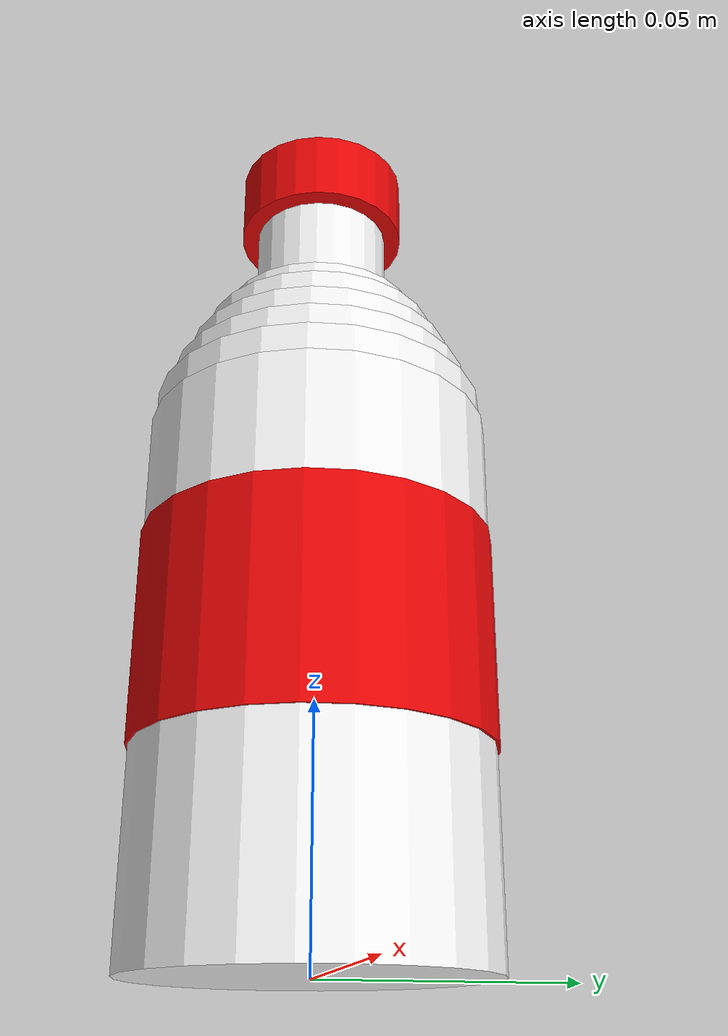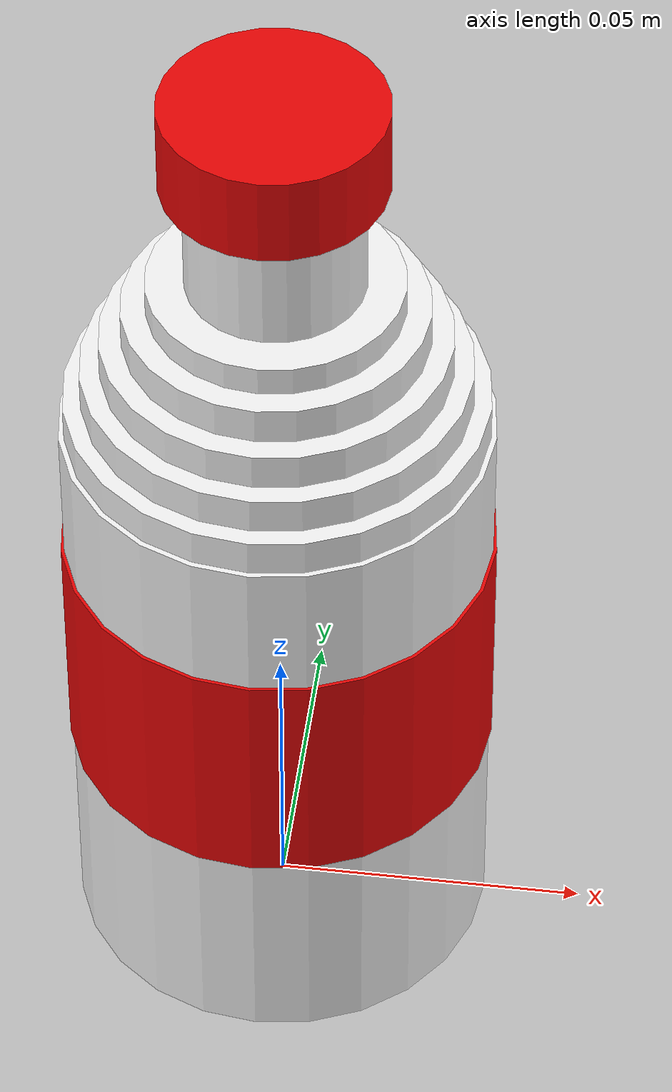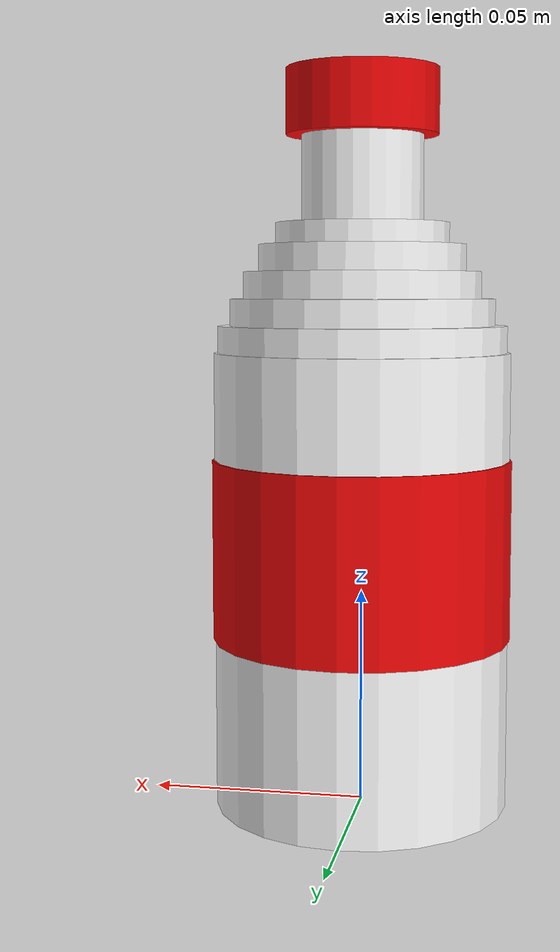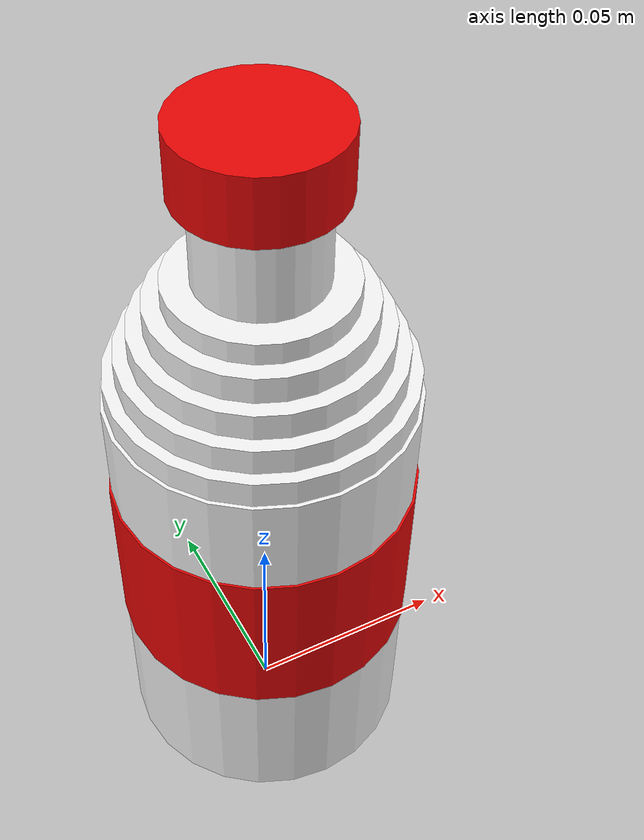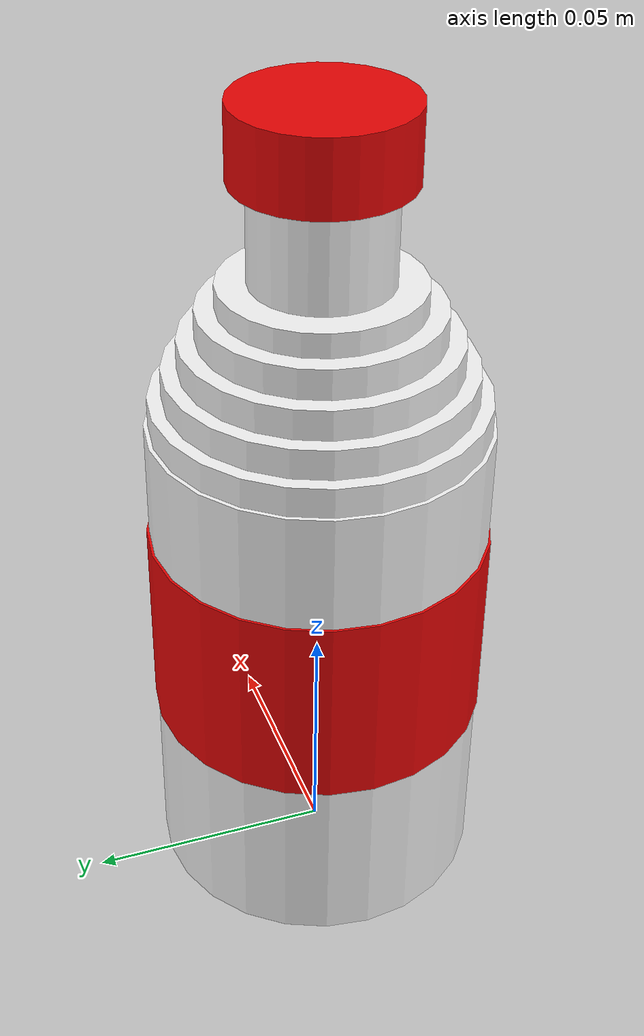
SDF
<?xml version="1.0"?>
<sdf version="1.6">
  <model name="bottle_model">
    <static>true</static>
    <link name="bottle_link">
      <collision name="bottle_collision">
        <pose>0 0 0.085 0 0 0</pose>
        <geometry>
          <cylinder>
            <radius>0.035</radius>
            <length>0.17</length>
          </cylinder>
        </geometry>
      </collision>

      <visual name="lower_body">
        <pose>0 0 0.01971 0 0 0</pose>
        <geometry>
          <cylinder>
            <radius>0.03412</radius>
            <length>0.03942</length>
          </cylinder>
        </geometry>
        <material>
          <ambient>0.95 0.95 0.95 1</ambient>
          <diffuse>0.95 0.95 0.95 1</diffuse>
          <specular>0.15 0.15 0.15 1</specular>
        </material>
      </visual>

      <visual name="red_waist_band">
        <pose>0 0 0.06036 0 0 0</pose>
        <geometry>
          <cylinder>
            <radius>0.03465</radius>
            <length>0.04189</length>
          </cylinder>
        </geometry>
        <material>
          <ambient>0.75 0.01 0.01 1</ambient>
          <diffuse>0.90 0.02 0.02 1</diffuse>
          <specular>0.20 0.05 0.05 1</specular>
        </material>
      </visual>

      <visual name="upper_body">
        <pose>0 0 0.09362 0 0 0</pose>
        <geometry>
          <cylinder>
            <radius>0.03412</radius>
            <length>0.02464</length>
          </cylinder>
        </geometry>
        <material>
          <ambient>0.95 0.95 0.95 1</ambient>
          <diffuse>0.95 0.95 0.95 1</diffuse>
          <specular>0.15 0.15 0.15 1</specular>
        </material>
      </visual>

      <visual name="shoulder_1">
        <pose>0 0 0.10902 0 0 0</pose>
        <geometry>
          <cylinder>
            <radius>0.03325</radius>
            <length>0.00616</length>
          </cylinder>
        </geometry>
        <material>
          <ambient>0.95 0.95 0.95 1</ambient>
          <diffuse>0.95 0.95 0.95 1</diffuse>
        </material>
      </visual>

      <visual name="shoulder_2">
        <pose>0 0 0.11518 0 0 0</pose>
        <geometry>
          <cylinder>
            <radius>0.03045</radius>
            <length>0.00616</length>
          </cylinder>
        </geometry>
        <material>
          <ambient>0.95 0.95 0.95 1</ambient>
          <diffuse>0.95 0.95 0.95 1</diffuse>
        </material>
      </visual>

      <visual name="shoulder_3">
        <pose>0 0 0.12134 0 0 0</pose>
        <geometry>
          <cylinder>
            <radius>0.02730</radius>
            <length>0.00616</length>
          </cylinder>
        </geometry>
        <material>
          <ambient>0.95 0.95 0.95 1</ambient>
          <diffuse>0.95 0.95 0.95 1</diffuse>
        </material>
      </visual>

      <visual name="shoulder_4">
        <pose>0 0 0.12750 0 0 0</pose>
        <geometry>
          <cylinder>
            <radius>0.02380</radius>
            <length>0.00616</length>
          </cylinder>
        </geometry>
        <material>
          <ambient>0.95 0.95 0.95 1</ambient>
          <diffuse>0.95 0.95 0.95 1</diffuse>
        </material>
      </visual>

      <visual name="shoulder_5">
        <pose>0 0 0.13304 0 0 0</pose>
        <geometry>
          <cylinder>
            <radius>0.01994</radius>
            <length>0.00493</length>
          </cylinder>
        </geometry>
        <material>
          <ambient>0.95 0.95 0.95 1</ambient>
          <diffuse>0.95 0.95 0.95 1</diffuse>
        </material>
      </visual>

      <visual name="neck">
        <pose>0 0 0.14536 0 0 0</pose>
        <geometry>
          <cylinder>
            <radius>0.01399</radius>
            <length>0.01971</length>
          </cylinder>
        </geometry>
        <material>
          <ambient>0.95 0.95 0.95 1</ambient>
          <diffuse>0.95 0.95 0.95 1</diffuse>
          <specular>0.15 0.15 0.15 1</specular>
        </material>
      </visual>

      <visual name="red_cap">
        <pose>0 0 0.16261 0 0 0</pose>
        <geometry>
          <cylinder>
            <radius>0.01749</radius>
            <length>0.01478</length>
          </cylinder>
        </geometry>
        <material>
          <ambient>0.75 0.01 0.01 1</ambient>
          <diffuse>0.90 0.02 0.02 1</diffuse>
          <specular>0.20 0.05 0.05 1</specular>
        </material>
      </visual>
    </link>
  </model>
</sdf>
